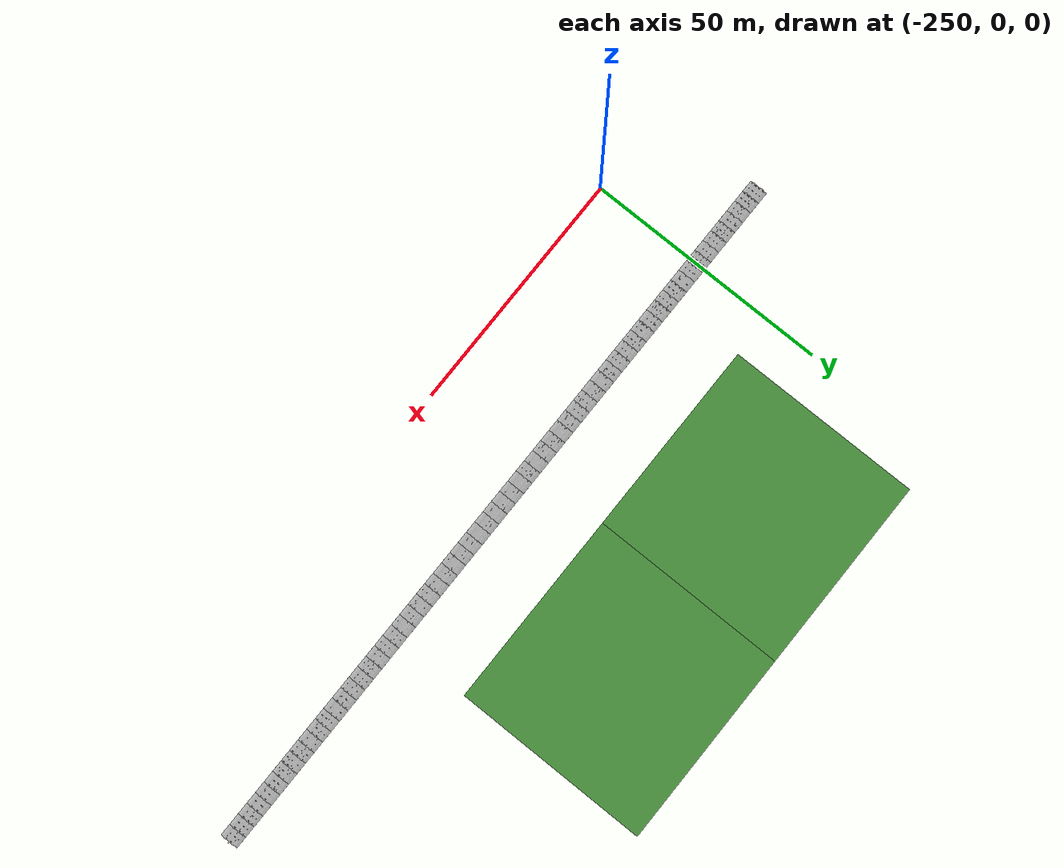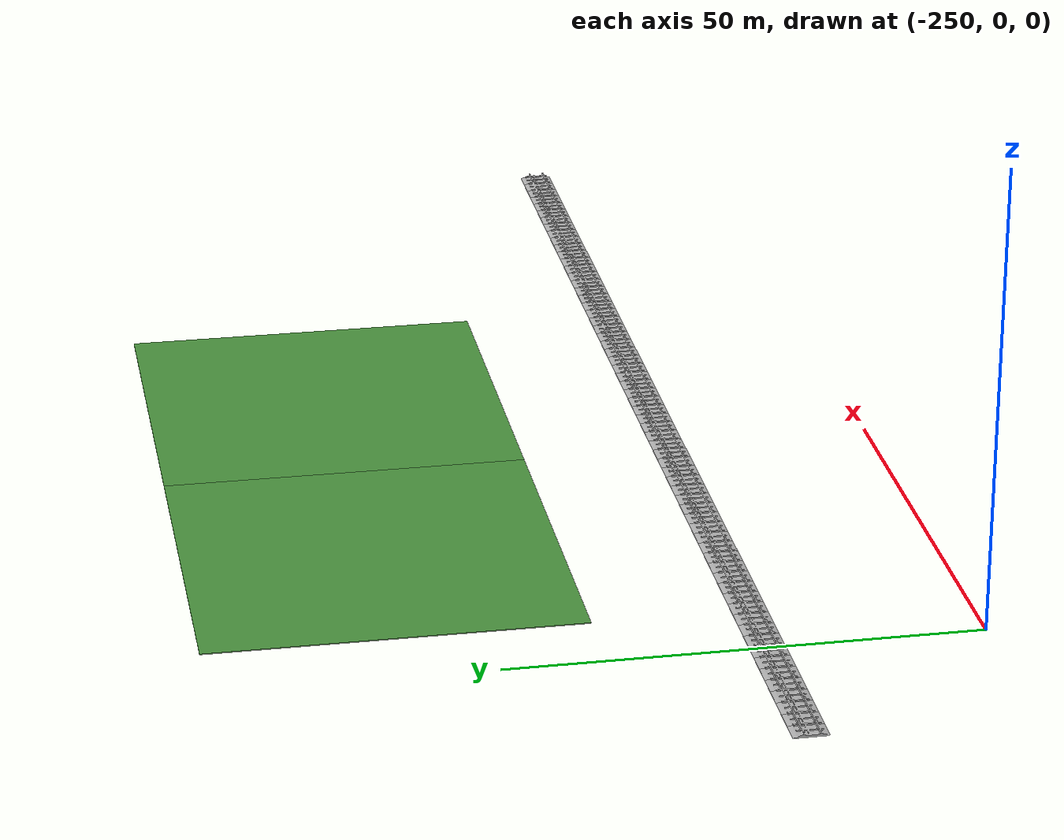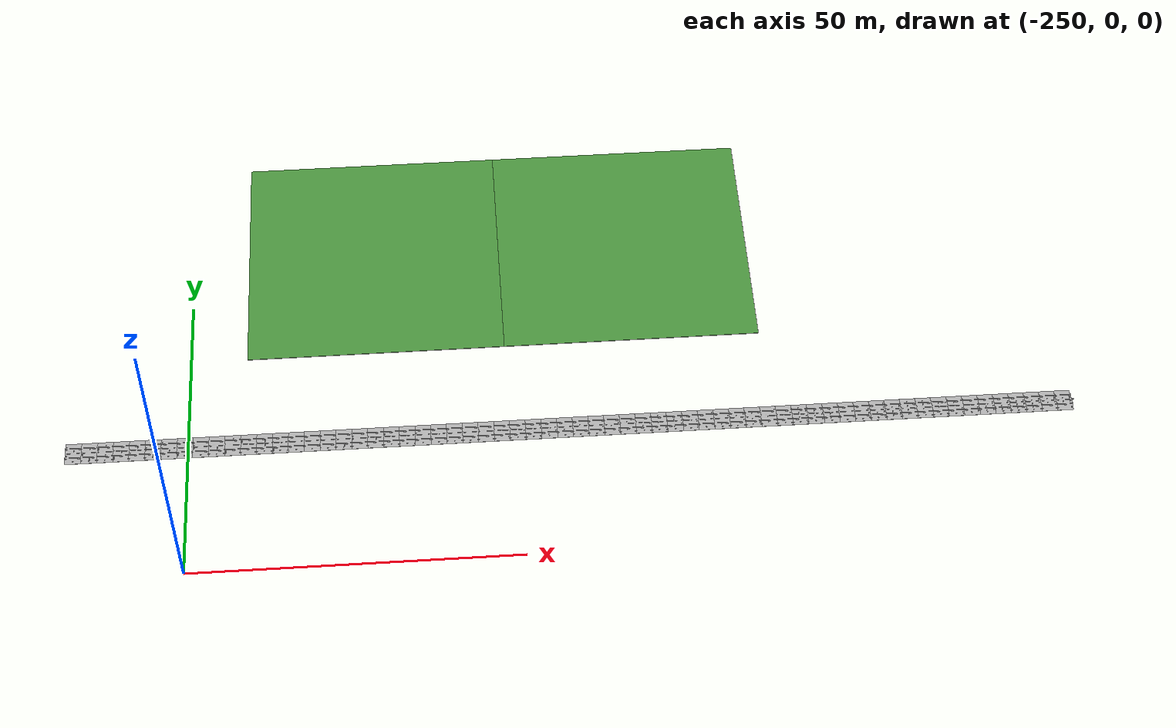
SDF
<sdf version="1.7">
 <world name="default">
  <model name="railway64_4">
   <model name="railway32">
    <model name="railway16">
     <model name="railway8">
      <model name="railway4">
       <model name="railway2">
        <model name="railway">
         <static>1</static>
         <link name="link">
          <visual name="visual"><geometry><mesh><uri>model://railway/meshes/model.dae</uri></mesh></geometry></visual>
         </link>
         <pose>1.19969 -6.9e-05 0 0 -0 0</pose>
        </model>
        <model name="railway_0">
         <static>1</static>
         <link name="link">
          <visual name="visual"><geometry><mesh><uri>model://railway/meshes/model.dae</uri></mesh></geometry></visual>
         </link>
         <pose>-1.1997 6.9e-05 0 0 -0 0</pose>
        </model>
        <static>0</static>
        <pose>-2.39934 4.6e-05 0 0 -0 0</pose>
       </model>
       <model name="railway2_0">
        <model name="railway">
         <static>1</static>
         <link name="link">
          <visual name="visual"><geometry><mesh><uri>model://railway/meshes/model.dae</uri></mesh></geometry></visual>
         </link>
         <pose>1.19969 -6.9e-05 0 0 -0 0</pose>
        </model>
        <model name="railway_0">
         <static>1</static>
         <link name="link">
          <visual name="visual"><geometry><mesh><uri>model://railway/meshes/model.dae</uri></mesh></geometry></visual>
         </link>
         <pose>-1.1997 6.9e-05 0 0 -0 0</pose>
        </model>
        <static>0</static>
        <pose>2.39934 -5.4e-05 0 0 -0 0</pose>
       </model>
       <static>0</static>
       <pose>4.79871 -0.000105 0 0 -0 0</pose>
      </model>
      <model name="railway4_0">
       <model name="railway2">
        <model name="railway">
         <static>1</static>
         <link name="link">
          <visual name="visual"><geometry><mesh><uri>model://railway/meshes/model.dae</uri></mesh></geometry></visual>
         </link>
         <pose>1.19969 -6.9e-05 0 0 -0 0</pose>
        </model>
        <model name="railway_0">
         <static>1</static>
         <link name="link">
          <visual name="visual"><geometry><mesh><uri>model://railway/meshes/model.dae</uri></mesh></geometry></visual>
         </link>
         <pose>-1.1997 6.9e-05 0 0 -0 0</pose>
        </model>
        <static>0</static>
        <pose>-2.39934 4.6e-05 0 0 -0 0</pose>
       </model>
       <model name="railway2_0">
        <model name="railway">
         <static>1</static>
         <link name="link">
          <visual name="visual"><geometry><mesh><uri>model://railway/meshes/model.dae</uri></mesh></geometry></visual>
         </link>
         <pose>1.19969 -6.9e-05 0 0 -0 0</pose>
        </model>
        <model name="railway_0">
         <static>1</static>
         <link name="link">
          <visual name="visual"><geometry><mesh><uri>model://railway/meshes/model.dae</uri></mesh></geometry></visual>
         </link>
         <pose>-1.1997 6.9e-05 0 0 -0 0</pose>
        </model>
        <static>0</static>
        <pose>2.39934 -5.4e-05 0 0 -0 0</pose>
       </model>
       <static>0</static>
       <pose>-4.79871 9.6e-05 0 0 -0 0</pose>
      </model>
      <static>0</static>
      <pose>9.5973 -0.000147 0 0 -0 0</pose>
     </model>
     <model name="railway8_0">
      <model name="railway4">
       <model name="railway2">
        <model name="railway">
         <static>1</static>
         <link name="link">
          <visual name="visual"><geometry><mesh><uri>model://railway/meshes/model.dae</uri></mesh></geometry></visual>
         </link>
         <pose>1.19969 -6.9e-05 0 0 -0 0</pose>
        </model>
        <model name="railway_0">
         <static>1</static>
         <link name="link">
          <visual name="visual"><geometry><mesh><uri>model://railway/meshes/model.dae</uri></mesh></geometry></visual>
         </link>
         <pose>-1.1997 6.9e-05 0 0 -0 0</pose>
        </model>
        <static>0</static>
        <pose>-2.39934 4.6e-05 0 0 -0 0</pose>
       </model>
       <model name="railway2_0">
        <model name="railway">
         <static>1</static>
         <link name="link">
          <visual name="visual"><geometry><mesh><uri>model://railway/meshes/model.dae</uri></mesh></geometry></visual>
         </link>
         <pose>1.19969 -6.9e-05 0 0 -0 0</pose>
        </model>
        <model name="railway_0">
         <static>1</static>
         <link name="link">
          <visual name="visual"><geometry><mesh><uri>model://railway/meshes/model.dae</uri></mesh></geometry></visual>
         </link>
         <pose>-1.1997 6.9e-05 0 0 -0 0</pose>
        </model>
        <static>0</static>
        <pose>2.39934 -5.4e-05 0 0 -0 0</pose>
       </model>
       <static>0</static>
       <pose>4.79871 -0.000105 0 0 -0 0</pose>
      </model>
      <model name="railway4_0">
       <model name="railway2">
        <model name="railway">
         <static>1</static>
         <link name="link">
          <visual name="visual"><geometry><mesh><uri>model://railway/meshes/model.dae</uri></mesh></geometry></visual>
         </link>
         <pose>1.19969 -6.9e-05 0 0 -0 0</pose>
        </model>
        <model name="railway_0">
         <static>1</static>
         <link name="link">
          <visual name="visual"><geometry><mesh><uri>model://railway/meshes/model.dae</uri></mesh></geometry></visual>
         </link>
         <pose>-1.1997 6.9e-05 0 0 -0 0</pose>
        </model>
        <static>0</static>
        <pose>-2.39934 4.6e-05 0 0 -0 0</pose>
       </model>
       <model name="railway2_0">
        <model name="railway">
         <static>1</static>
         <link name="link">
          <visual name="visual"><geometry><mesh><uri>model://railway/meshes/model.dae</uri></mesh></geometry></visual>
         </link>
         <pose>1.19969 -6.9e-05 0 0 -0 0</pose>
        </model>
        <model name="railway_0">
         <static>1</static>
         <link name="link">
          <visual name="visual"><geometry><mesh><uri>model://railway/meshes/model.dae</uri></mesh></geometry></visual>
         </link>
         <pose>-1.1997 6.9e-05 0 0 -0 0</pose>
        </model>
        <static>0</static>
        <pose>2.39934 -5.4e-05 0 0 -0 0</pose>
       </model>
       <static>0</static>
       <pose>-4.79871 9.6e-05 0 0 -0 0</pose>
      </model>
      <static>0</static>
      <pose>-9.59731 0.000145 0 0 -0 0</pose>
     </model>
     <static>0</static>
     <pose>19.1948 -0.00044 0 0 -0 0</pose>
    </model>
    <model name="railway16_0">
     <model name="railway8">
      <model name="railway4">
       <model name="railway2">
        <model name="railway">
         <static>1</static>
         <link name="link">
          <visual name="visual"><geometry><mesh><uri>model://railway/meshes/model.dae</uri></mesh></geometry></visual>
         </link>
         <pose>1.19969 -6.9e-05 0 0 -0 0</pose>
        </model>
        <model name="railway_0">
         <static>1</static>
         <link name="link">
          <visual name="visual"><geometry><mesh><uri>model://railway/meshes/model.dae</uri></mesh></geometry></visual>
         </link>
         <pose>-1.1997 6.9e-05 0 0 -0 0</pose>
        </model>
        <static>0</static>
        <pose>-2.39934 4.6e-05 0 0 -0 0</pose>
       </model>
       <model name="railway2_0">
        <model name="railway">
         <static>1</static>
         <link name="link">
          <visual name="visual"><geometry><mesh><uri>model://railway/meshes/model.dae</uri></mesh></geometry></visual>
         </link>
         <pose>1.19969 -6.9e-05 0 0 -0 0</pose>
        </model>
        <model name="railway_0">
         <static>1</static>
         <link name="link">
          <visual name="visual"><geometry><mesh><uri>model://railway/meshes/model.dae</uri></mesh></geometry></visual>
         </link>
         <pose>-1.1997 6.9e-05 0 0 -0 0</pose>
        </model>
        <static>0</static>
        <pose>2.39934 -5.4e-05 0 0 -0 0</pose>
       </model>
       <static>0</static>
       <pose>4.79871 -0.000105 0 0 -0 0</pose>
      </model>
      <model name="railway4_0">
       <model name="railway2">
        <model name="railway">
         <static>1</static>
         <link name="link">
          <visual name="visual"><geometry><mesh><uri>model://railway/meshes/model.dae</uri></mesh></geometry></visual>
         </link>
         <pose>1.19969 -6.9e-05 0 0 -0 0</pose>
        </model>
        <model name="railway_0">
         <static>1</static>
         <link name="link">
          <visual name="visual"><geometry><mesh><uri>model://railway/meshes/model.dae</uri></mesh></geometry></visual>
         </link>
         <pose>-1.1997 6.9e-05 0 0 -0 0</pose>
        </model>
        <static>0</static>
        <pose>-2.39934 4.6e-05 0 0 -0 0</pose>
       </model>
       <model name="railway2_0">
        <model name="railway">
         <static>1</static>
         <link name="link">
          <visual name="visual"><geometry><mesh><uri>model://railway/meshes/model.dae</uri></mesh></geometry></visual>
         </link>
         <pose>1.19969 -6.9e-05 0 0 -0 0</pose>
        </model>
        <model name="railway_0">
         <static>1</static>
         <link name="link">
          <visual name="visual"><geometry><mesh><uri>model://railway/meshes/model.dae</uri></mesh></geometry></visual>
         </link>
         <pose>-1.1997 6.9e-05 0 0 -0 0</pose>
        </model>
        <static>0</static>
        <pose>2.39934 -5.4e-05 0 0 -0 0</pose>
       </model>
       <static>0</static>
       <pose>-4.79871 9.6e-05 0 0 -0 0</pose>
      </model>
      <static>0</static>
      <pose>9.5973 -0.000147 0 0 -0 0</pose>
     </model>
     <model name="railway8_0">
      <model name="railway4">
       <model name="railway2">
        <model name="railway">
         <static>1</static>
         <link name="link">
          <visual name="visual"><geometry><mesh><uri>model://railway/meshes/model.dae</uri></mesh></geometry></visual>
         </link>
         <pose>1.19969 -6.9e-05 0 0 -0 0</pose>
        </model>
        <model name="railway_0">
         <static>1</static>
         <link name="link">
          <visual name="visual"><geometry><mesh><uri>model://railway/meshes/model.dae</uri></mesh></geometry></visual>
         </link>
         <pose>-1.1997 6.9e-05 0 0 -0 0</pose>
        </model>
        <static>0</static>
        <pose>-2.39934 4.6e-05 0 0 -0 0</pose>
       </model>
       <model name="railway2_0">
        <model name="railway">
         <static>1</static>
         <link name="link">
          <visual name="visual"><geometry><mesh><uri>model://railway/meshes/model.dae</uri></mesh></geometry></visual>
         </link>
         <pose>1.19969 -6.9e-05 0 0 -0 0</pose>
        </model>
        <model name="railway_0">
         <static>1</static>
         <link name="link">
          <visual name="visual"><geometry><mesh><uri>model://railway/meshes/model.dae</uri></mesh></geometry></visual>
         </link>
         <pose>-1.1997 6.9e-05 0 0 -0 0</pose>
        </model>
        <static>0</static>
        <pose>2.39934 -5.4e-05 0 0 -0 0</pose>
       </model>
       <static>0</static>
       <pose>4.79871 -0.000105 0 0 -0 0</pose>
      </model>
      <model name="railway4_0">
       <model name="railway2">
        <model name="railway">
         <static>1</static>
         <link name="link">
          <visual name="visual"><geometry><mesh><uri>model://railway/meshes/model.dae</uri></mesh></geometry></visual>
         </link>
         <pose>1.19969 -6.9e-05 0 0 -0 0</pose>
        </model>
        <model name="railway_0">
         <static>1</static>
         <link name="link">
          <visual name="visual"><geometry><mesh><uri>model://railway/meshes/model.dae</uri></mesh></geometry></visual>
         </link>
         <pose>-1.1997 6.9e-05 0 0 -0 0</pose>
        </model>
        <static>0</static>
        <pose>-2.39934 4.6e-05 0 0 -0 0</pose>
       </model>
       <model name="railway2_0">
        <model name="railway">
         <static>1</static>
         <link name="link">
          <visual name="visual"><geometry><mesh><uri>model://railway/meshes/model.dae</uri></mesh></geometry></visual>
         </link>
         <pose>1.19969 -6.9e-05 0 0 -0 0</pose>
        </model>
        <model name="railway_0">
         <static>1</static>
         <link name="link">
          <visual name="visual"><geometry><mesh><uri>model://railway/meshes/model.dae</uri></mesh></geometry></visual>
         </link>
         <pose>-1.1997 6.9e-05 0 0 -0 0</pose>
        </model>
        <static>0</static>
        <pose>2.39934 -5.4e-05 0 0 -0 0</pose>
       </model>
       <static>0</static>
       <pose>-4.79871 9.6e-05 0 0 -0 0</pose>
      </model>
      <static>0</static>
      <pose>-9.59731 0.000145 0 0 -0 0</pose>
     </model>
     <static>0</static>
     <pose>-19.1948 0.000444 0 0 -0 0</pose>
    </model>
    <static>0</static>
    <pose>38.3896 -0.000844 0 0 -0 0</pose>
   </model>
   <model name="railway32_0">
    <model name="railway16">
     <model name="railway8">
      <model name="railway4">
       <model name="railway2">
        <model name="railway">
         <static>1</static>
         <link name="link">
          <visual name="visual"><geometry><mesh><uri>model://railway/meshes/model.dae</uri></mesh></geometry></visual>
         </link>
         <pose>1.19969 -6.9e-05 0 0 -0 0</pose>
        </model>
        <model name="railway_0">
         <static>1</static>
         <link name="link">
          <visual name="visual"><geometry><mesh><uri>model://railway/meshes/model.dae</uri></mesh></geometry></visual>
         </link>
         <pose>-1.1997 6.9e-05 0 0 -0 0</pose>
        </model>
        <static>0</static>
        <pose>-2.39934 4.6e-05 0 0 -0 0</pose>
       </model>
       <model name="railway2_0">
        <model name="railway">
         <static>1</static>
         <link name="link">
          <visual name="visual"><geometry><mesh><uri>model://railway/meshes/model.dae</uri></mesh></geometry></visual>
         </link>
         <pose>1.19969 -6.9e-05 0 0 -0 0</pose>
        </model>
        <model name="railway_0">
         <static>1</static>
         <link name="link">
          <visual name="visual"><geometry><mesh><uri>model://railway/meshes/model.dae</uri></mesh></geometry></visual>
         </link>
         <pose>-1.1997 6.9e-05 0 0 -0 0</pose>
        </model>
        <static>0</static>
        <pose>2.39934 -5.4e-05 0 0 -0 0</pose>
       </model>
       <static>0</static>
       <pose>4.79871 -0.000105 0 0 -0 0</pose>
      </model>
      <model name="railway4_0">
       <model name="railway2">
        <model name="railway">
         <static>1</static>
         <link name="link">
          <visual name="visual"><geometry><mesh><uri>model://railway/meshes/model.dae</uri></mesh></geometry></visual>
         </link>
         <pose>1.19969 -6.9e-05 0 0 -0 0</pose>
        </model>
        <model name="railway_0">
         <static>1</static>
         <link name="link">
          <visual name="visual"><geometry><mesh><uri>model://railway/meshes/model.dae</uri></mesh></geometry></visual>
         </link>
         <pose>-1.1997 6.9e-05 0 0 -0 0</pose>
        </model>
        <static>0</static>
        <pose>-2.39934 4.6e-05 0 0 -0 0</pose>
       </model>
       <model name="railway2_0">
        <model name="railway">
         <static>1</static>
         <link name="link">
          <visual name="visual"><geometry><mesh><uri>model://railway/meshes/model.dae</uri></mesh></geometry></visual>
         </link>
         <pose>1.19969 -6.9e-05 0 0 -0 0</pose>
        </model>
        <model name="railway_0">
         <static>1</static>
         <link name="link">
          <visual name="visual"><geometry><mesh><uri>model://railway/meshes/model.dae</uri></mesh></geometry></visual>
         </link>
         <pose>-1.1997 6.9e-05 0 0 -0 0</pose>
        </model>
        <static>0</static>
        <pose>2.39934 -5.4e-05 0 0 -0 0</pose>
       </model>
       <static>0</static>
       <pose>-4.79871 9.6e-05 0 0 -0 0</pose>
      </model>
      <static>0</static>
      <pose>9.5973 -0.000147 0 0 -0 0</pose>
     </model>
     <model name="railway8_0">
      <model name="railway4">
       <model name="railway2">
        <model name="railway">
         <static>1</static>
         <link name="link">
          <visual name="visual"><geometry><mesh><uri>model://railway/meshes/model.dae</uri></mesh></geometry></visual>
         </link>
         <pose>1.19969 -6.9e-05 0 0 -0 0</pose>
        </model>
        <model name="railway_0">
         <static>1</static>
         <link name="link">
          <visual name="visual"><geometry><mesh><uri>model://railway/meshes/model.dae</uri></mesh></geometry></visual>
         </link>
         <pose>-1.1997 6.9e-05 0 0 -0 0</pose>
        </model>
        <static>0</static>
        <pose>-2.39934 4.6e-05 0 0 -0 0</pose>
       </model>
       <model name="railway2_0">
        <model name="railway">
         <static>1</static>
         <link name="link">
          <visual name="visual"><geometry><mesh><uri>model://railway/meshes/model.dae</uri></mesh></geometry></visual>
         </link>
         <pose>1.19969 -6.9e-05 0 0 -0 0</pose>
        </model>
        <model name="railway_0">
         <static>1</static>
         <link name="link">
          <visual name="visual"><geometry><mesh><uri>model://railway/meshes/model.dae</uri></mesh></geometry></visual>
         </link>
         <pose>-1.1997 6.9e-05 0 0 -0 0</pose>
        </model>
        <static>0</static>
        <pose>2.39934 -5.4e-05 0 0 -0 0</pose>
       </model>
       <static>0</static>
       <pose>4.79871 -0.000105 0 0 -0 0</pose>
      </model>
      <model name="railway4_0">
       <model name="railway2">
        <model name="railway">
         <static>1</static>
         <link name="link">
          <visual name="visual"><geometry><mesh><uri>model://railway/meshes/model.dae</uri></mesh></geometry></visual>
         </link>
         <pose>1.19969 -6.9e-05 0 0 -0 0</pose>
        </model>
        <model name="railway_0">
         <static>1</static>
         <link name="link">
          <visual name="visual"><geometry><mesh><uri>model://railway/meshes/model.dae</uri></mesh></geometry></visual>
         </link>
         <pose>-1.1997 6.9e-05 0 0 -0 0</pose>
        </model>
        <static>0</static>
        <pose>-2.39934 4.6e-05 0 0 -0 0</pose>
       </model>
       <model name="railway2_0">
        <model name="railway">
         <static>1</static>
         <link name="link">
          <visual name="visual"><geometry><mesh><uri>model://railway/meshes/model.dae</uri></mesh></geometry></visual>
         </link>
         <pose>1.19969 -6.9e-05 0 0 -0 0</pose>
        </model>
        <model name="railway_0">
         <static>1</static>
         <link name="link">
          <visual name="visual"><geometry><mesh><uri>model://railway/meshes/model.dae</uri></mesh></geometry></visual>
         </link>
         <pose>-1.1997 6.9e-05 0 0 -0 0</pose>
        </model>
        <static>0</static>
        <pose>2.39934 -5.4e-05 0 0 -0 0</pose>
       </model>
       <static>0</static>
       <pose>-4.79871 9.6e-05 0 0 -0 0</pose>
      </model>
      <static>0</static>
      <pose>-9.59731 0.000145 0 0 -0 0</pose>
     </model>
     <static>0</static>
     <pose>19.1948 -0.00044 0 0 -0 0</pose>
    </model>
    <model name="railway16_0">
     <model name="railway8">
      <model name="railway4">
       <model name="railway2">
        <model name="railway">
         <static>1</static>
         <link name="link">
          <visual name="visual"><geometry><mesh><uri>model://railway/meshes/model.dae</uri></mesh></geometry></visual>
         </link>
         <pose>1.19969 -6.9e-05 0 0 -0 0</pose>
        </model>
        <model name="railway_0">
         <static>1</static>
         <link name="link">
          <visual name="visual"><geometry><mesh><uri>model://railway/meshes/model.dae</uri></mesh></geometry></visual>
         </link>
         <pose>-1.1997 6.9e-05 0 0 -0 0</pose>
        </model>
        <static>0</static>
        <pose>-2.39934 4.6e-05 0 0 -0 0</pose>
       </model>
       <model name="railway2_0">
        <model name="railway">
         <static>1</static>
         <link name="link">
          <visual name="visual"><geometry><mesh><uri>model://railway/meshes/model.dae</uri></mesh></geometry></visual>
         </link>
         <pose>1.19969 -6.9e-05 0 0 -0 0</pose>
        </model>
        <model name="railway_0">
         <static>1</static>
         <link name="link">
          <visual name="visual"><geometry><mesh><uri>model://railway/meshes/model.dae</uri></mesh></geometry></visual>
         </link>
         <pose>-1.1997 6.9e-05 0 0 -0 0</pose>
        </model>
        <static>0</static>
        <pose>2.39934 -5.4e-05 0 0 -0 0</pose>
       </model>
       <static>0</static>
       <pose>4.79871 -0.000105 0 0 -0 0</pose>
      </model>
      <model name="railway4_0">
       <model name="railway2">
        <model name="railway">
         <static>1</static>
         <link name="link">
          <visual name="visual"><geometry><mesh><uri>model://railway/meshes/model.dae</uri></mesh></geometry></visual>
         </link>
         <pose>1.19969 -6.9e-05 0 0 -0 0</pose>
        </model>
        <model name="railway_0">
         <static>1</static>
         <link name="link">
          <visual name="visual"><geometry><mesh><uri>model://railway/meshes/model.dae</uri></mesh></geometry></visual>
         </link>
         <pose>-1.1997 6.9e-05 0 0 -0 0</pose>
        </model>
        <static>0</static>
        <pose>-2.39934 4.6e-05 0 0 -0 0</pose>
       </model>
       <model name="railway2_0">
        <model name="railway">
         <static>1</static>
         <link name="link">
          <visual name="visual"><geometry><mesh><uri>model://railway/meshes/model.dae</uri></mesh></geometry></visual>
         </link>
         <pose>1.19969 -6.9e-05 0 0 -0 0</pose>
        </model>
        <model name="railway_0">
         <static>1</static>
         <link name="link">
          <visual name="visual"><geometry><mesh><uri>model://railway/meshes/model.dae</uri></mesh></geometry></visual>
         </link>
         <pose>-1.1997 6.9e-05 0 0 -0 0</pose>
        </model>
        <static>0</static>
        <pose>2.39934 -5.4e-05 0 0 -0 0</pose>
       </model>
       <static>0</static>
       <pose>-4.79871 9.6e-05 0 0 -0 0</pose>
      </model>
      <static>0</static>
      <pose>9.5973 -0.000147 0 0 -0 0</pose>
     </model>
     <model name="railway8_0">
      <model name="railway4">
       <model name="railway2">
        <model name="railway">
         <static>1</static>
         <link name="link">
          <visual name="visual"><geometry><mesh><uri>model://railway/meshes/model.dae</uri></mesh></geometry></visual>
         </link>
         <pose>1.19969 -6.9e-05 0 0 -0 0</pose>
        </model>
        <model name="railway_0">
         <static>1</static>
         <link name="link">
          <visual name="visual"><geometry><mesh><uri>model://railway/meshes/model.dae</uri></mesh></geometry></visual>
         </link>
         <pose>-1.1997 6.9e-05 0 0 -0 0</pose>
        </model>
        <static>0</static>
        <pose>-2.39934 4.6e-05 0 0 -0 0</pose>
       </model>
       <model name="railway2_0">
        <model name="railway">
         <static>1</static>
         <link name="link">
          <visual name="visual"><geometry><mesh><uri>model://railway/meshes/model.dae</uri></mesh></geometry></visual>
         </link>
         <pose>1.19969 -6.9e-05 0 0 -0 0</pose>
        </model>
        <model name="railway_0">
         <static>1</static>
         <link name="link">
          <visual name="visual"><geometry><mesh><uri>model://railway/meshes/model.dae</uri></mesh></geometry></visual>
         </link>
         <pose>-1.1997 6.9e-05 0 0 -0 0</pose>
        </model>
        <static>0</static>
        <pose>2.39934 -5.4e-05 0 0 -0 0</pose>
       </model>
       <static>0</static>
       <pose>4.79871 -0.000105 0 0 -0 0</pose>
      </model>
      <model name="railway4_0">
       <model name="railway2">
        <model name="railway">
         <static>1</static>
         <link name="link">
          <visual name="visual"><geometry><mesh><uri>model://railway/meshes/model.dae</uri></mesh></geometry></visual>
         </link>
         <pose>1.19969 -6.9e-05 0 0 -0 0</pose>
        </model>
        <model name="railway_0">
         <static>1</static>
         <link name="link">
          <visual name="visual"><geometry><mesh><uri>model://railway/meshes/model.dae</uri></mesh></geometry></visual>
         </link>
         <pose>-1.1997 6.9e-05 0 0 -0 0</pose>
        </model>
        <static>0</static>
        <pose>-2.39934 4.6e-05 0 0 -0 0</pose>
       </model>
       <model name="railway2_0">
        <model name="railway">
         <static>1</static>
         <link name="link">
          <visual name="visual"><geometry><mesh><uri>model://railway/meshes/model.dae</uri></mesh></geometry></visual>
         </link>
         <pose>1.19969 -6.9e-05 0 0 -0 0</pose>
        </model>
        <model name="railway_0">
         <static>1</static>
         <link name="link">
          <visual name="visual"><geometry><mesh><uri>model://railway/meshes/model.dae</uri></mesh></geometry></visual>
         </link>
         <pose>-1.1997 6.9e-05 0 0 -0 0</pose>
        </model>
        <static>0</static>
        <pose>2.39934 -5.4e-05 0 0 -0 0</pose>
       </model>
       <static>0</static>
       <pose>-4.79871 9.6e-05 0 0 -0 0</pose>
      </model>
      <static>0</static>
      <pose>-9.59731 0.000145 0 0 -0 0</pose>
     </model>
     <static>0</static>
     <pose>-19.1948 0.000444 0 0 -0 0</pose>
    </model>
    <static>0</static>
    <pose>-38.3896 0.000845 0 0 -0 0</pose>
   </model>
   <static>0</static>
   <pose>-193.002 22.7869 0 0 -0 0</pose>
  </model>
  <model name="grass_plane_40x40_6">
   <pose>-181.423 59.2429 -0.05 0 -0 0</pose>
   <static>1</static>
   <link name="link">
    <collision name="collision"><geometry><box><size>40 40 0.1</size></box></geometry></collision>
    <visual name="grass">
     <cast_shadows>0</cast_shadows>
     <geometry><box><size>40 40 0.1</size></box></geometry>
     <material>
      <script><uri>file://media/materials/scripts/gazebo.material</uri><name>Gazebo/Grass</name></script>
     </material>
    </visual>
   </link>
  </model>
  <model name="grass_plane_40x40_7">
   <pose>-221.417 59.2414 -0.05 0 -0 0</pose>
   <static>1</static>
   <link name="link">
    <collision name="collision"><geometry><box><size>40 40 0.1</size></box></geometry></collision>
    <visual name="grass">
     <cast_shadows>0</cast_shadows>
     <geometry><box><size>40 40 0.1</size></box></geometry>
     <material>
      <script><uri>file://media/materials/scripts/gazebo.material</uri><name>Gazebo/Grass</name></script>
     </material>
    </visual>
   </link>
  </model>
 </world>
</sdf>
